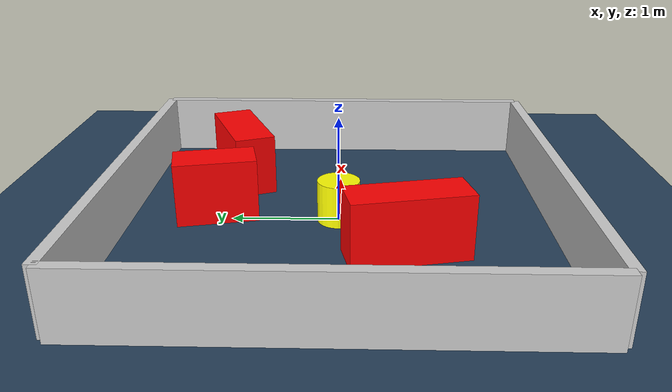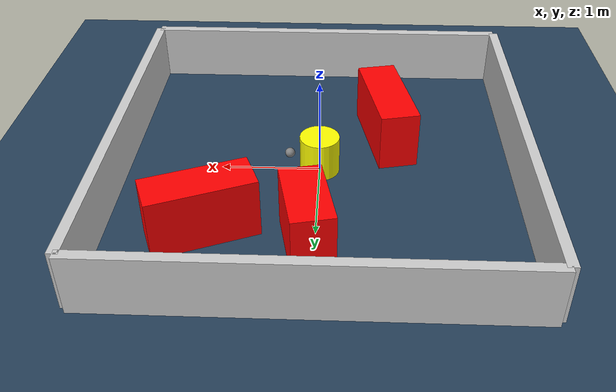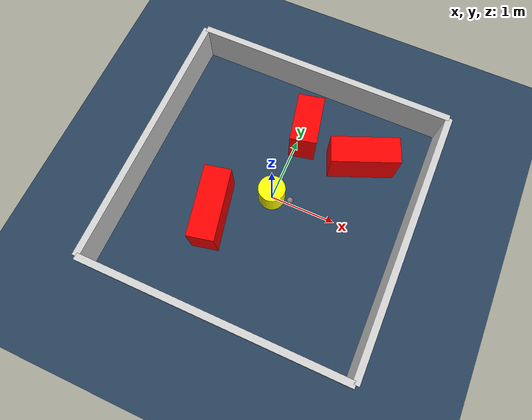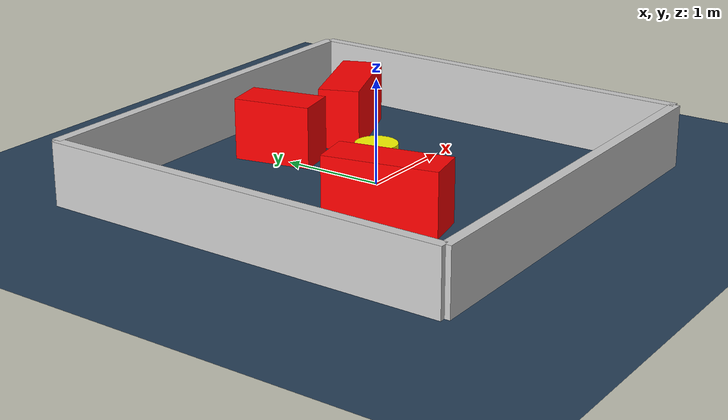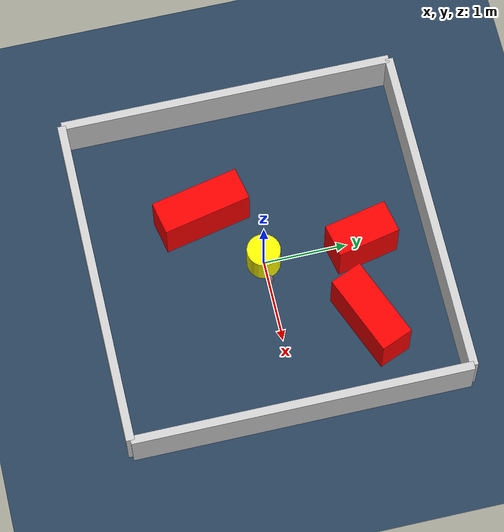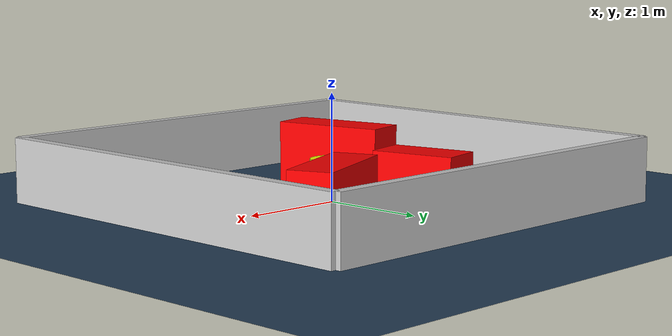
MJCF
<?xml version="1.0" ?>
<mujoco model="generated_environment">
  <option timestep="0.01" integrator="RK4" cone="elliptic"/>
  <default>
    <geom density="1"/>
  </default>
  <asset>
    <texture builtin="gradient" height="3072" rgb1="0.3 0.5 0.7" rgb2="0 0 0" type="skybox" width="512"/>
    <texture builtin="checker" height="300" mark="edge" markrgb="0.8 0.8 0.8" name="groundplane" rgb1="0.2 0.3 0.4" rgb2="0.1 0.2 0.3" type="2d" width="300"/>
    <material name="groundplane" reflectance="0.2" texrepeat="5 5" texture="groundplane" texuniform="true"/>
    <material name="robot" rgba="0.0 1.0 0.0 1"/>
  </asset>
  <worldbody>
    <light dir="0 0 -1" directional="true" pos="0 0 1.5"/>
    <geom condim="4" friction="1.0 0.005 0.001" material="groundplane" name="floor" size="0 0 0.05" type="plane"/>
    <body name="walls">
      <geom name="wall_1" condim="4" pos="-2.0 0.0 0.3" rgba="0.800000011920929 0.800000011920929 0.800000011920929 1.0" size="0.05 2.0 0.3" type="box"/>
      <geom name="wall_2" condim="4" pos="2.0 0.0 0.3" rgba="0.800000011920929 0.800000011920929 0.800000011920929 1.0" size="0.05 2.0 0.3" type="box"/>
      <geom name="wall_3" condim="4" pos="0.0 -2.0 0.3" rgba="0.800000011920929 0.800000011920929 0.800000011920929 1.0" size="2.0 0.05 0.3" type="box"/>
      <geom name="wall_4" condim="4" pos="0.0 2.0 0.3" rgba="0.800000011920929 0.800000011920929 0.800000011920929 1.0" size="2.0 0.05 0.3" type="box"/>
    </body>
    <body name="robot">
      <joint name="joint_x" type="slide" pos="0 0 0" axis="1 0 0"/>
      <joint name="joint_y" type="slide" pos="0 0 0" axis="0 1 0"/>
      <geom name="robot" type="sphere" pos="0.3 0.0 0.2" size="0.05" mass="5." friction="1.0 0.005 0.0001" condim="4" rgba="0.5 0.5 0.5 1.0"/>
      <site name="sensor_ball"/>
    </body>
    <body name="obstacle_movable_1">
      <geom name="obstacle_movable_1" condim="4" pos="0.0 0.0 0.2" euler="0 0 0.0" friction="1.0 0.005 0.001" rgba="1.0 1.0 0.0 1.0" size="0.2 0.2 0.0" type="cylinder" mass="0.1"/>
      <joint type="free"/>
    </body>
    <body name="obstacle_2_static">
      <geom name="obstacle_2_static" condim="4" pos="0.07096431286696547 1.1602587594949496 0.3" euler="0 0 282.1044621626492" friction="1.0 0.005 0.001" rgba="1 0 0 1" size="0.3808188661195685 0.2 0.3" type="box"/>
    </body>
    <body name="obstacle_3_static">
      <geom name="obstacle_3_static" condim="4" pos="1.037529260129299 1.03191568633901 0.3" euler="0 0 202.20903013201197" friction="1.0 0.005 0.001" rgba="1 0 0 1" size="0.5059415795050055 0.2 0.3" type="box"/>
    </body>
    <body name="obstacle_4_static">
      <geom name="obstacle_4_static" condim="4" pos="-0.6935226973585683 -0.5968241925504916 0.3" euler="0 0 102.07408838088817" friction="1.0 0.005 0.001" rgba="1 0 0 1" size="0.5341336752699433 0.2 0.3" type="box"/>
    </body>
  </worldbody>
  <actuator>
    <motor name="actuator_x" joint="joint_x" gear="1" ctrlrange="-1 1"/>
    <motor name="actuator_y" joint="joint_y" gear="1" ctrlrange="-1 1"/>
  </actuator>
</mujoco>
